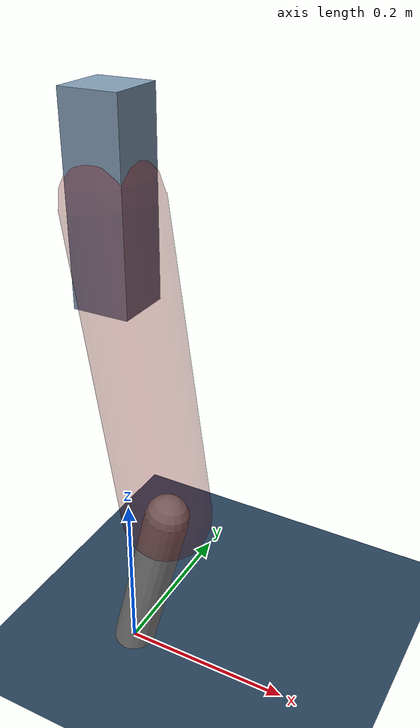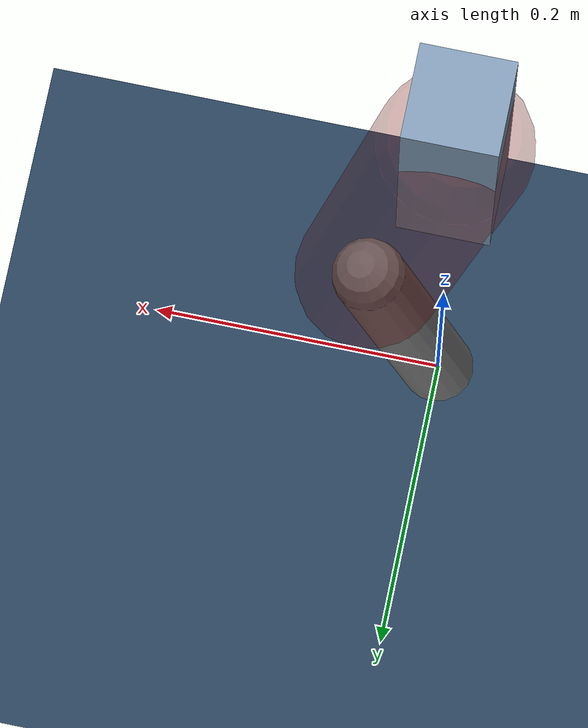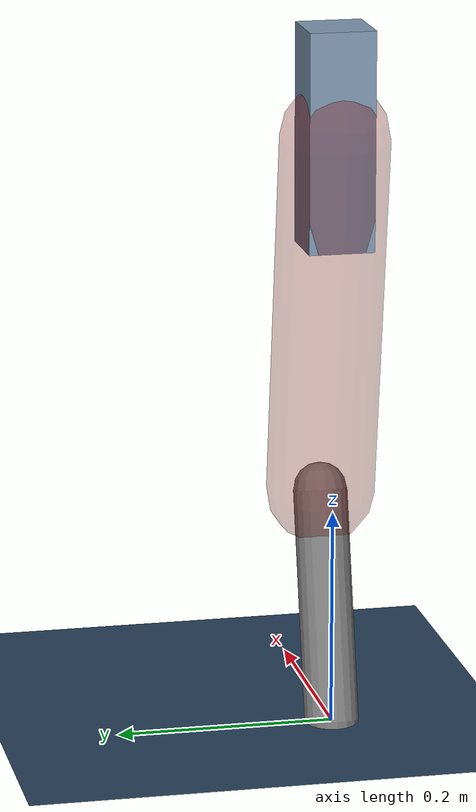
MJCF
<mujoco model="Hopper2D">
	<compiler inertiafromgeom="true" angle="radian" />
	<option timestep="0.001" integrator="implicit" cone="elliptic" solver="Newton" tolerance="1e-10" />

	<default>
		<geom contype="1" conaffinity="1" condim="3" friction="2 0.005 0.0001" solref="0.005 1" />
		<joint limited="true" damping="0.1" />
	</default>

	<asset>
		<texture name="skybox" type="skybox" builtin="gradient" rgb1=".4 .6 .8" rgb2="0 0 0" width="800" height="800" />
		<texture name="grid" type="2d" builtin="checker" rgb1=".1 .2 .3" rgb2=".2 .3 .4" width="300" height="300" mark="edge" markrgb=".2 .3 .4" />
		<material name="ground" texture="grid" texrepeat="1 1" texuniform="true" reflectance="0.1" />
		<material name="leg" rgba="0.5 0.6 0.7 1" />
	</asset>

	<worldbody>

		<geom name="floor" type="plane" size="5 5 0.25" material="ground" />

		<light directional="false" diffuse="0.8 0.8 0.8" specular="0.3 0.3 0.3" pos="0 0 2" dir="0 0 -1" />
		<light mode="targetbodycom" target="base" directional="false" diffuse="0.8 0.8 0.8" specular="0.3 0.3 0.3" pos="0 0 2" dir="0 0 -1" />

		<camera name="fixed" pos="0 -2 1" xyaxes="1 0 0 0 0 1" />
		<camera name="tracking" mode="trackcom" pos="0 -3 1" />

		<body name="root" pos="0 0 0.5494478192698834">
			<joint name="slide_x" type="slide" axis="1 0 0" range="-100 100" />
			<joint name="slide_z" type="slide" axis="0 0 1" range="0 10" />

			<body name="base" pos="0 0 0">
				<geom name="torso" type="box" size="0.03 0.03 0.1" mass="2.218" material="leg" />

				<body name="link1" pos="0 0 0" euler="0 1.4223428132779627 0">
					<joint type="hinge" axis="0 -1 0" pos="0 0 0" name="hinge1" limited="true" range="-3.14 3.14" stiffness="0" damping="0.1" />
					<geom name="thigh" type="capsule" fromto="0 0 0 0.34559296655254346 0 0" size="0.05" rgba="0.5 0 0 0.3" mass="1.1142603063471217" />

					<body name="link2" pos="0.34559296655254346 0 0" euler="0 0.3898131905922274 0">
						<joint type="hinge" axis="0 -1 0" pos="0 0 0" name="hinge2" limited="true" range="-3.14 3.14" stiffness="0" damping="0.1" />
						<geom name="shank" type="capsule" fromto="0 0 0 0.21385485271733995 0 0" size="0.025" mass="0.41256936744560596" />

					</body>
				</body>
			</body>
		</body>
	</worldbody>

	<actuator>
		<motor name="torque1" joint="hinge1" ctrlrange="-85.6805552321294 85.6805552321294" ctrllimited="true" gear="1" />
		<motor name="torque2" joint="hinge2" ctrlrange="-85.03578214419636 85.03578214419636" ctrllimited="true" gear="1" />
	</actuator>
</mujoco>
